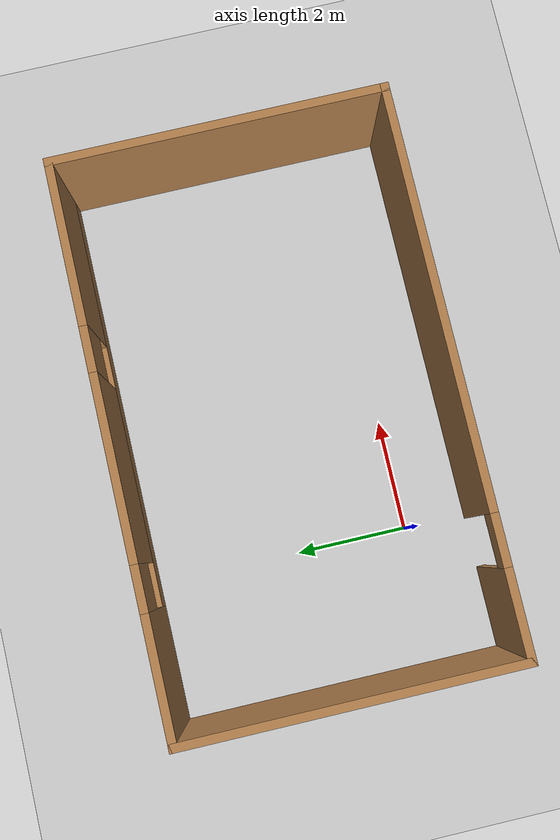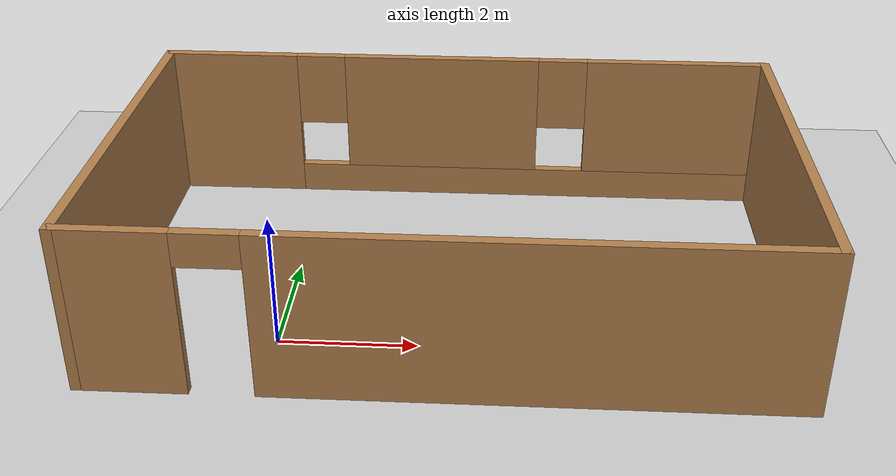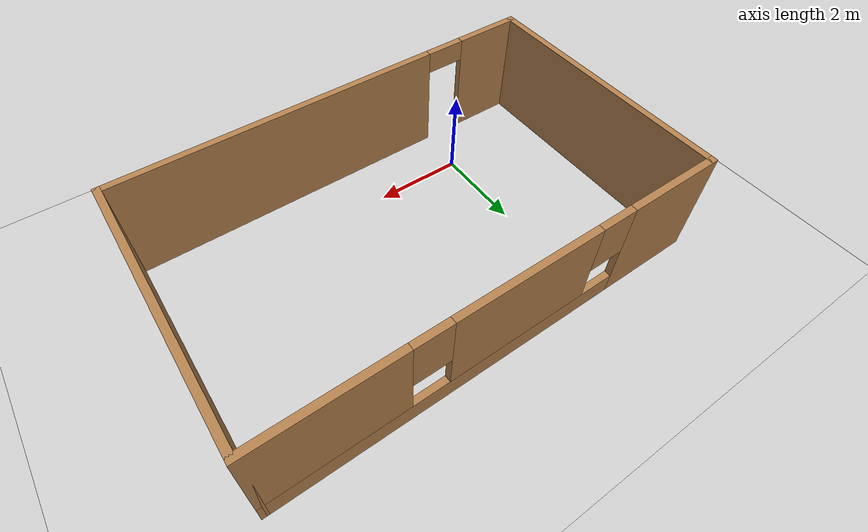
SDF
<sdf version="1.7">
 <world name="default">
  <light name="sun" type="directional">
   <pose>0 0 10 0 -0 0</pose>
   <diffuse>0.8 0.8 0.8 1</diffuse>
   <specular>0.2 0.2 0.2 1</specular>
   <attenuation>
    <range>1000</range>
    <constant>0.9</constant>
    <linear>0.01</linear>
    <quadratic>0.001</quadratic>
   </attenuation>
   <direction>-0.5 0.1 -0.9</direction>
   <spot><inner_angle>0</inner_angle><outer_angle>0</outer_angle><falloff>0</falloff></spot>
  </light>
  <model name="ground_plane">
   <static>1</static>
   <link name="link">
    <collision name="collision">
     <geometry><plane><normal>0 0 1</normal><size>100 100</size></plane></geometry>
     <surface>
      <contact><collide_bitmask>65535</collide_bitmask></contact>
      <friction><ode><mu>100</mu><mu2>50</mu2></ode></friction>
     </surface>
    </collision>
    <visual name="visual">
     <cast_shadows>0</cast_shadows>
     <geometry><plane><normal>0 0 1</normal><size>100 100</size></plane></geometry>
     <material>
      <script><uri>file://media/materials/scripts/gazebo.material</uri><name>Gazebo/Grey</name></script>
     </material>
    </visual>
   </link>
  </model>
  <gravity>0 0 -9.8</gravity>
  <magnetic_field>6e-06 2.3e-05 -4.2e-05</magnetic_field>
  <atmosphere type="adiabatic"/>
  <physics type="ode">
   <max_step_size>0.001</max_step_size>
   <real_time_factor>1</real_time_factor>
   <real_time_update_rate>1000</real_time_update_rate>
  </physics>
  <scene><ambient>0.4 0.4 0.4 1</ambient><background>0.7 0.7 0.7 1</background><shadows>1</shadows></scene>
  <spherical_coordinates>
   <surface_model>EARTH_WGS84</surface_model>
   <latitude_deg>0</latitude_deg>
   <longitude_deg>0</longitude_deg>
   <elevation>0</elevation>
   <heading_deg>0</heading_deg>
  </spherical_coordinates>
  <model name="Simple_farm">
   <pose>2.415 1.735 0 0 -0 0</pose>
   <link name="Wall_0">
    <collision name="Wall_0_Collision">
     <geometry><box><size>6 0.15 2.5</size></box></geometry>
     <pose>0 0 1.25 0 -0 0</pose>
    </collision>
    <visual name="Wall_0_Visual">
     <pose>0 0 1.25 0 -0 0</pose>
     <geometry><box><size>6 0.15 2.5</size></box></geometry>
     <material>
      <script><uri>file://media/materials/scripts/gazebo.material</uri><name>Gazebo/Wood</name></script>
      <ambient>1 1 1 1</ambient>
     </material>
     <meta><layer>0</layer></meta>
    </visual>
    <pose>-4.925 -0 0 0 -0 1.5708</pose>
   </link>
   <link name="Wall_1">
    <pose>-0 2.925 0 0 -0 0</pose>
    <visual name="Wall_1_Visual_0">
     <pose>-3.89094 0 1.25 0 -0 0</pose>
     <geometry><box><size>2.21813 0.15 2.5</size></box></geometry>
     <material>
      <script><uri>file://media/materials/scripts/gazebo.material</uri><name>Gazebo/Wood</name></script>
      <ambient>1 1 1 1</ambient>
     </material>
     <meta><layer>0</layer></meta>
    </visual>
    <collision name="Wall_1_Collision_0">
     <geometry><box><size>2.21813 0.15 2.5</size></box></geometry>
     <pose>-3.89094 0 1.25 0 -0 0</pose>
    </collision>
    <visual name="Wall_1_Visual_1">
     <pose>1.10906 0 0.25 0 -0 0</pose>
     <geometry><box><size>7.78188 0.15 0.5</size></box></geometry>
     <material>
      <script><uri>file://media/materials/scripts/gazebo.material</uri><name>Gazebo/Wood</name></script>
      <ambient>1 1 1 1</ambient>
     </material>
     <meta><layer>0</layer></meta>
    </visual>
    <collision name="Wall_1_Collision_1">
     <geometry><box><size>7.78188 0.15 0.5</size></box></geometry>
     <pose>1.10906 0 0.25 0 -0 0</pose>
    </collision>
    <visual name="Wall_1_Visual_2">
     <pose>-0.373559 0 1.5 0 -0 0</pose>
     <geometry><box><size>3.21663 0.15 2</size></box></geometry>
     <material>
      <script><uri>file://media/materials/scripts/gazebo.material</uri><name>Gazebo/Wood</name></script>
      <ambient>1 1 1 1</ambient>
     </material>
     <meta><layer>0</layer></meta>
    </visual>
    <collision name="Wall_1_Collision_2">
     <geometry><box><size>3.21663 0.15 2</size></box></geometry>
     <pose>-0.373559 0 1.5 0 -0 0</pose>
    </collision>
    <visual name="Wall_1_Visual_3">
     <pose>3.51738 0 1.5 0 -0 0</pose>
     <geometry><box><size>2.96524 0.15 2</size></box></geometry>
     <material>
      <script><uri>file://media/materials/scripts/gazebo.material</uri><name>Gazebo/Wood</name></script>
      <ambient>1 1 1 1</ambient>
     </material>
     <meta><layer>0</layer></meta>
    </visual>
    <collision name="Wall_1_Collision_3">
     <geometry><box><size>2.96524 0.15 2</size></box></geometry>
     <pose>3.51738 0 1.5 0 -0 0</pose>
    </collision>
    <visual name="Wall_1_Visual_4">
     <pose>-2.38187 0 1.9 0 -0 0</pose>
     <geometry><box><size>0.8 0.15 1.2</size></box></geometry>
     <material>
      <script><uri>file://media/materials/scripts/gazebo.material</uri><name>Gazebo/Wood</name></script>
      <ambient>1 1 1 1</ambient>
     </material>
     <meta><layer>0</layer></meta>
    </visual>
    <collision name="Wall_1_Collision_4">
     <geometry><box><size>0.8 0.15 1.2</size></box></geometry>
     <pose>-2.38187 0 1.9 0 -0 0</pose>
    </collision>
    <visual name="Wall_1_Visual_5">
     <pose>1.63476 0 1.9 0 -0 0</pose>
     <geometry><box><size>0.8 0.15 1.2</size></box></geometry>
     <material>
      <script><uri>file://media/materials/scripts/gazebo.material</uri><name>Gazebo/Wood</name></script>
      <ambient>1 1 1 1</ambient>
     </material>
     <meta><layer>0</layer></meta>
    </visual>
    <collision name="Wall_1_Collision_5">
     <geometry><box><size>0.8 0.15 1.2</size></box></geometry>
     <pose>1.63476 0 1.9 0 -0 0</pose>
    </collision>
   </link>
   <link name="Wall_2">
    <collision name="Wall_2_Collision">
     <geometry><box><size>6 0.15 2.5</size></box></geometry>
     <pose>0 0 1.25 0 -0 0</pose>
    </collision>
    <visual name="Wall_2_Visual">
     <pose>0 0 1.25 0 -0 0</pose>
     <geometry><box><size>6 0.15 2.5</size></box></geometry>
     <material>
      <script><uri>file://media/materials/scripts/gazebo.material</uri><name>Gazebo/Wood</name></script>
      <ambient>1 1 1 1</ambient>
     </material>
     <meta><layer>0</layer></meta>
    </visual>
    <pose>4.925 -0 0 0 -0 -1.5708</pose>
   </link>
   <link name="Wall_3">
    <pose>-0 -2.925 0 0 -0 3.14159</pose>
    <visual name="Wall_3_Visual_0">
     <pose>-1.25476 0 1.25 0 -0 0</pose>
     <geometry><box><size>7.49048 0.15 2.5</size></box></geometry>
     <material>
      <script><uri>file://media/materials/scripts/gazebo.material</uri><name>Gazebo/Wood</name></script>
      <ambient>1 1 1 1</ambient>
     </material>
     <meta><layer>0</layer></meta>
    </visual>
    <collision name="Wall_3_Collision_0">
     <geometry><box><size>7.49048 0.15 2.5</size></box></geometry>
     <pose>-1.25476 0 1.25 0 -0 0</pose>
    </collision>
    <visual name="Wall_3_Visual_1">
     <pose>4.19524 0 1.25 0 -0 0</pose>
     <geometry><box><size>1.60952 0.15 2.5</size></box></geometry>
     <material>
      <script><uri>file://media/materials/scripts/gazebo.material</uri><name>Gazebo/Wood</name></script>
      <ambient>1 1 1 1</ambient>
     </material>
     <meta><layer>0</layer></meta>
    </visual>
    <collision name="Wall_3_Collision_1">
     <geometry><box><size>1.60952 0.15 2.5</size></box></geometry>
     <pose>4.19524 0 1.25 0 -0 0</pose>
    </collision>
    <visual name="Wall_3_Visual_2">
     <pose>2.94048 0 2.25 0 -0 0</pose>
     <geometry><box><size>0.9 0.15 0.5</size></box></geometry>
     <material>
      <script><uri>file://media/materials/scripts/gazebo.material</uri><name>Gazebo/Wood</name></script>
      <ambient>1 1 1 1</ambient>
     </material>
     <meta><layer>0</layer></meta>
    </visual>
    <collision name="Wall_3_Collision_2">
     <geometry><box><size>0.9 0.15 0.5</size></box></geometry>
     <pose>2.94048 0 2.25 0 -0 0</pose>
    </collision>
   </link>
   <static>1</static>
  </model>
  <light name="user_directional_light_0" type="directional">
   <pose>-0.725162 -3.85128 1 0 -0 0</pose>
   <diffuse>0.5 0.5 0.5 1</diffuse>
   <specular>0.1 0.1 0.1 1</specular>
   <direction>0.1 0.1 -0.9</direction>
   <attenuation>
    <range>20</range>
    <constant>0.5</constant>
    <linear>0.01</linear>
    <quadratic>0.001</quadratic>
   </attenuation>
  </light>
 </world>
</sdf>
